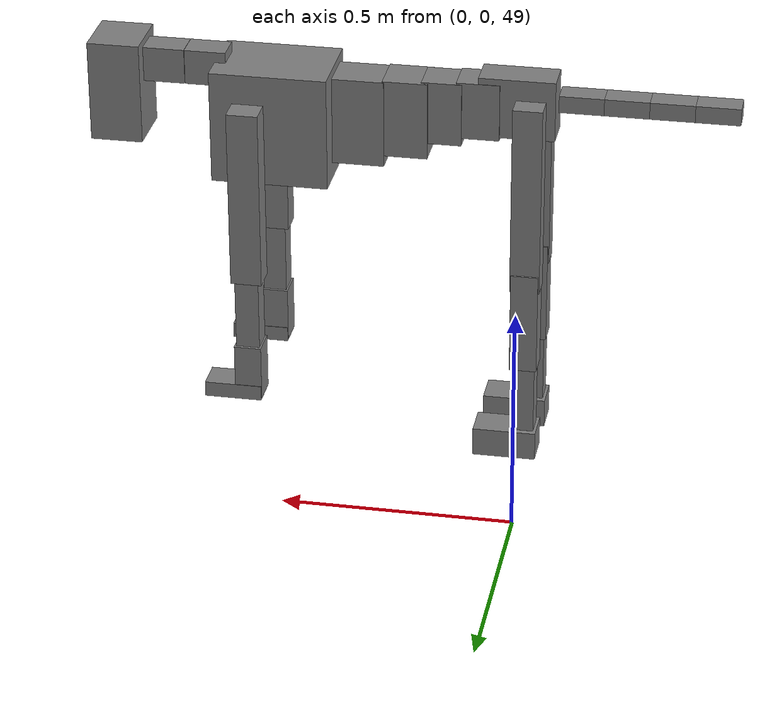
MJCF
<mujoco model="dog">

    <default>
        <joint armature="0.02" stiffness="1" damping="0.2" limited="true"/>
        <geom condim="3" friction="1 0.05 0.05" margin="0.01"/>
        <motor ctrllimited="true" ctrlrange="-1.0 1.0" forcelimited="true" gear="50"/>
    </default>

    <compiler inertiafromgeom="true" angle="radian"/>

    <option timestep="0.016" iterations="50" tolerance="1e-10" solver="Newton" jacobian="dense" cone="pyramidal"/>

    <size nconmax="20000" njmax="60000" nstack="5000000"/>
    <visual>
        <map force="0.1" zfar="30"/>
        <rgba haze="0.15 0.25 0.35 1"/>
        <quality shadowsize="2048"/>
        <global offwidth="800" offheight="800"/>
    </visual>

    <asset>
        <texture type="skybox" builtin="gradient" rgb1="0.3 0.5 0.7" rgb2="0 0 0" width="512" height="512"/>
        <texture name="texplane" type="2d" builtin="checker" rgb1=".2 .3 .4" rgb2=".1 0.15 0.2" width="512" height="512"
                 mark="cross" markrgb=".8 .8 .8"/>
        <texture name="texgeom" type="cube" builtin="flat" mark="cross" width="127" height="1278" rgb1="0.8 0.6 0.4"
                 rgb2="0.8 0.6 0.4" markrgb="1 1 1" random="0.01"/>

        <material name="matplane" reflectance="0.3" texture="texplane" texrepeat="1 1" texuniform="true"/>
        <material name="matgeom" texture="texgeom" texuniform="true" rgba="0.8 0.6 .4 1"/>
    </asset>

    <worldbody>
        <geom name="floor" pos="0 0 0" size="0 0 .25" type="plane" material="matplane" condim="3"/>

        <light directional="false" diffuse=".2 .2 .2" specular="0 0 0" pos="0 0 5" dir="0 0 -1" castshadow="false"/>
        <light mode="targetbodycom" target="torso" directional="false" diffuse=".8 .8 .8" specular="0.3 0.3 0.3"
               pos="0 0 4.0" dir="0 0 -1"/>

        <body name="root" pos="0 0 50">
            <freejoint name="root_1"/>
            <geom type="box" pos="0 0 -0.02" size="0.0774  0.0358  0.063" density="2030"/>

            <body name="spine1" pos="0.054 0 0">
                <joint name="spine1_y" axis="0 1 0" range="0 0.7" limited="true"/>
                <geom type="box" pos="0.02375 0 -0.03" size="0.04375  0.0375  0.05985" density="2030"/>

                <body name="spine2" pos="0.0612 0 0">
                    <joint name="spine2_y" axis="0 1 0" range="-0.15 0.15" limited="true"/>
                    <geom type="box" pos="0.03555  0  -0.04" size="0.04055  0.039  0.06615" density="2030"/>

                    <body name="spine3" pos="0.0730 0 0">
                        <joint name="spine3_y" axis="0 1 0" range="-0.15 0.15" limited="true"/>
                        <geom type="box" pos="0.03555  0  -0.057" size="0.04555  0.0445  0.081" density="2030"/>

                        <body name="spine4" pos="0.0780 0 0">
                            <joint name="spine4_y" axis="0 1 0" range="-0.15 0.15" limited="true"/>
                            <geom type="box" pos="0.05265  0  -0.07" size="0.05265  0.045  0.09135" density="2030"/>

                            <body name="torso" pos="0.1082 0 0">
                                <joint name="torso_y" axis="0 1 0" range="-0.15 0.15" limited="true"/>
                                <geom type="box" pos="0.11925  0  -0.085" size="0.11925  0.085  0.11745"
                                      density="2030"/>

                                <body name="neck1" pos="0.2160  0   0.0180">
                                    <joint name="neck1_y" axis="0 1 0" range="-1.2  -1" limited="true"/>
                                    <geom type="box" pos="0.0423  0  0" size="0.0423  0.03  0.036" density="2325"/>

                                    <body name="neck2" pos="0.0853  0  0">
                                        <joint name="neck2_y" axis="0 1 0" range="0.1  0" limited="true"/>
                                        <geom type="box" pos="0.0423  0  0" size="0.0423  0.03  0.036" density="2325"/>

                                        <body name="head" pos="0.0853  0  0">
                                            <joint name="head_y" axis="0 1 0" range="-0.3  -0.2" limited="true"/>
                                            <geom type="box" pos="0.0531  0  -0.055" size="0.0531  0.06  0.1044"
                                                  density="4030"/>

                                        </body>
                                    </body>
                                </body>

                                <body name="front_shoulder" pos="0.156  0   -0.0480">
                                    <joint name="front_shoulder_y" axis="0 1 0" range="-1 1.5" limited="true"/>
                                    <geom type="box" pos="0 0.13 -0.1606" size="0.0318  0.0272  0.1873" density="1158"/>
                                    <geom type="box" pos="0 -0.13 -0.1606" size="0.0318  0.0272  0.1873"
                                          density="1158"/>

                                    <body name="front_elbow" pos="0  0  -0.3213">
                                        <joint name="front_elbow_y" axis="0 1 0" range="-2 0" limited="true"/>
                                        <geom type="box" pos="0 0.13 -0.0921" size="0.0243  0.0248  0.0921"
                                              density="1081"/>
                                        <geom type="box" pos="0 -0.13 -0.0921" size="0.0243  0.0248  0.0921"
                                              density="1081"/>

                                        <body name="front_wrist" pos="0  0  -0.1842">
                                            <joint name="front_wrist_y" axis="0 1 0" range="-0.2 0" limited="true"/>
                                            <geom type="box" pos="0 0.13 -0.0447" size="0.0277  0.0308  0.0579"
                                                  density="1664"/>
                                            <geom type="box" pos="0 -0.13 -0.0447" size="0.0277  0.0308  0.0579"
                                                  density="1664"/>

                                            <body name="front_finger_end" pos="0  0  -0.0895">
                                                <joint name="front_finger_y" axis="0 1 0" range="-0.4 1"
                                                       limited="true"/>
                                                <geom type="box" pos="0.0321  0.13  -0.0009"
                                                      size="0.0589  0.0321  0.0159" density="1515"/>
                                                <geom type="box" pos="0.0321  -0.13  -0.0009"
                                                      size="0.0589  0.0321  0.0159" density="1515"/>

                                            </body>

                                        </body>
                                    </body>
                                </body>

                            </body>
                        </body>
                    </body>
                </body>
            </body>

            <body name="back_hip" pos="-0.03 0 -0.018">
                <joint name="back_hip_y" axis="0 1 0" range="-1.5 0.3" limited="true"/>
                <geom type="box" pos="0 0.07 -0.1776" size="0.0301  0.0236  0.2004" density="1154"/>
                <geom type="box" pos="0 -0.07 -0.1776" size="0.0301  0.0236  0.2004" density="1154"/>

                <body name="back_knee" pos="0  0  -0.3553">
                    <joint name="back_knee_y" axis="0 1 0" range="0 2.8" limited="true"/>
                    <geom type="box" pos="0 0.07 -0.0922" size="0.0278  0.0274  0.1077" density="1227"/>
                    <geom type="box" pos="0 -0.07 -0.0922" size="0.0278  0.0274  0.1077" density="1227"/>

                    <body name="back_ankle" pos="0  0  -0.1843">
                        <joint name="back_ankle_y" axis="0 1 0" range="-2.2 0" limited="true"/>
                        <geom type="box" pos="0 0.07 -0.0865" size="0.0235  0.0235  0.0978" density="1284"/>
                        <geom type="box" pos="0 -0.07 -0.0865" size="0.0235  0.0235  0.0978" density="1284"/>

                        <body name="back_toe_end" pos="0  0  -0.1730">
                            <joint name="back_toe_y" axis="0 1 0" range="-0.4 1" limited="true"/>
                            <geom type="box" pos="0.0354  0.07  -0.0151" size="0.0649  0.0354  0.0301" density="1515"/>
                            <geom type="box" pos="0.0354  -0.07  -0.0151" size="0.0649  0.0354  0.0301" density="1515"/>

                        </body>
                    </body>
                </body>
            </body>

            <body name="tail1" pos="-0.074 0 -0.006">
                <joint name="tail1_y" axis="0 1 0" range="-0.2 0.2" limited="true"/>
                <geom type="box" pos="-0.0536  0  0" size="0.045  0.025  0.0175" density="1587"/>

                <body name="tail2" pos="-0.09 0 0">
                    <joint name="tail2_y" axis="0 1 0" range="-0.2 0.2" limited="true"/>
                    <geom type="box" pos="-0.0536  0  0" size="0.045  0.025  0.0175" density="1587"/>

                    <body name="tail3" pos="-0.09 0 0">
                        <joint name="tail3_y" axis="0 1 0" range="-0.2 0.2" limited="true"/>
                        <geom type="box" pos="-0.0536  0  0" size="0.045  0.025  0.0175" density="1587"/>

                        <body name="tail4" pos="-0.09 0 0">
                            <joint name="tail4_y" axis="0 1 0" range="-0.2 0.2" limited="true"/>
                            <geom type="box" pos="-0.0536  0  0" size="0.045  0.025  0.0175" density="1587"/>

                        </body>
                    </body>
                </body>
            </body>
        </body>
    </worldbody>

    <actuator>
        <motor joint="spine1_y" forcerange="-150 150     "/>
        <motor joint="spine2_y" forcerange="-150 150     "/>
        <motor joint="spine3_y" forcerange="-150 150     "/>
        <motor joint="spine4_y" forcerange="-150 150     "/>
        <motor joint="torso_y" forcerange="-150 150     "/>
        <motor joint="neck1_y" forcerange="-100 100       "/>
        <motor joint="neck2_y" forcerange="-100 100       "/>
        <motor joint="head_y" forcerange="-150 150       "/>
        <motor joint="front_shoulder_y" forcerange="-120.93 160.28"/>
        <motor joint="front_elbow_y" forcerange="-110.25 170.18"/>
        <motor joint="front_wrist_y" forcerange="-96.59 149.50"/>
        <motor joint="front_finger_y" forcerange="-44.79 86.62"/>
        <motor joint="back_hip_y" forcerange="-282.89 232.16"/>
        <motor joint="back_knee_y" forcerange="-308.25 290.45"/>
        <motor joint="back_angle_y" forcerange="-146.12 129.94"/>
        <motor joint="back_toe_y" forcerange="-104.93 98.35"/>
        <motor joint="tail1_y" forcerange="-50 50     "/>
        <motor joint="tail2_y" forcerange="-50 50     "/>
        <motor joint="tail3_y" forcerange="-50 50     "/>
        <motor joint="tail4_y" forcerange="-50 50     "/>
    </actuator>
</mujoco>
